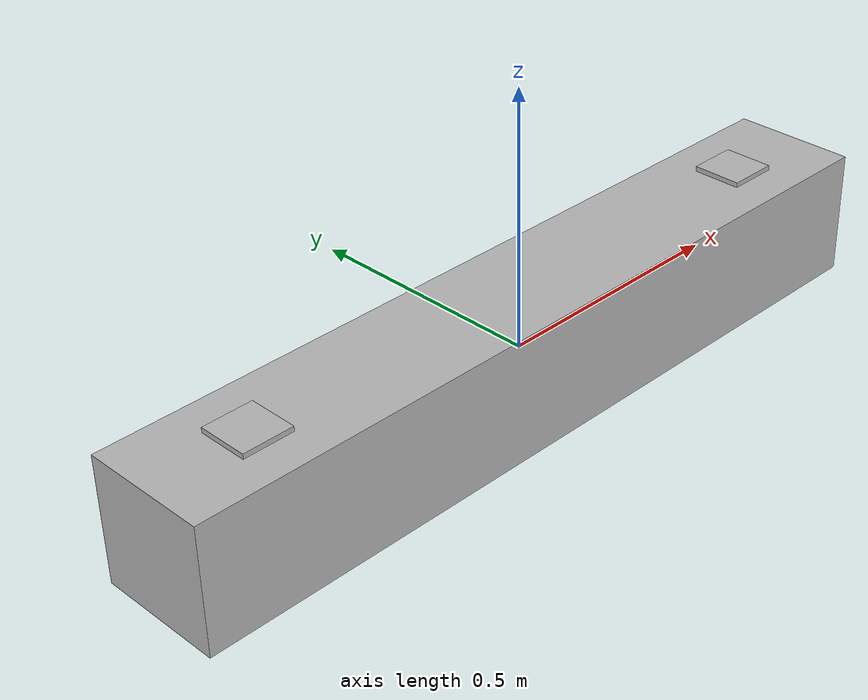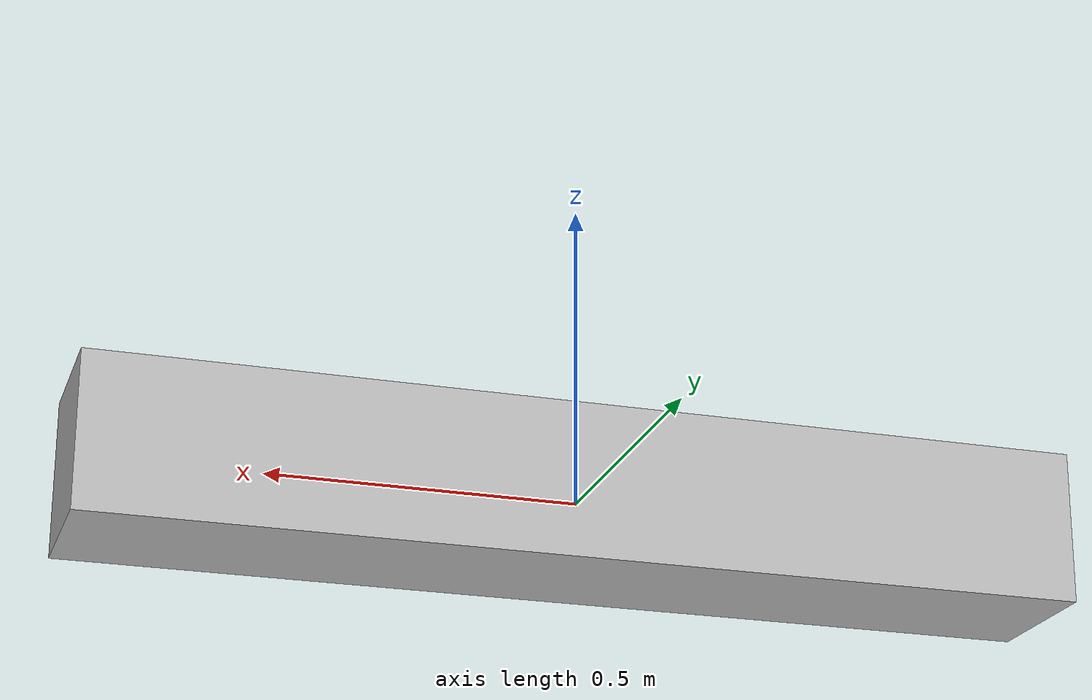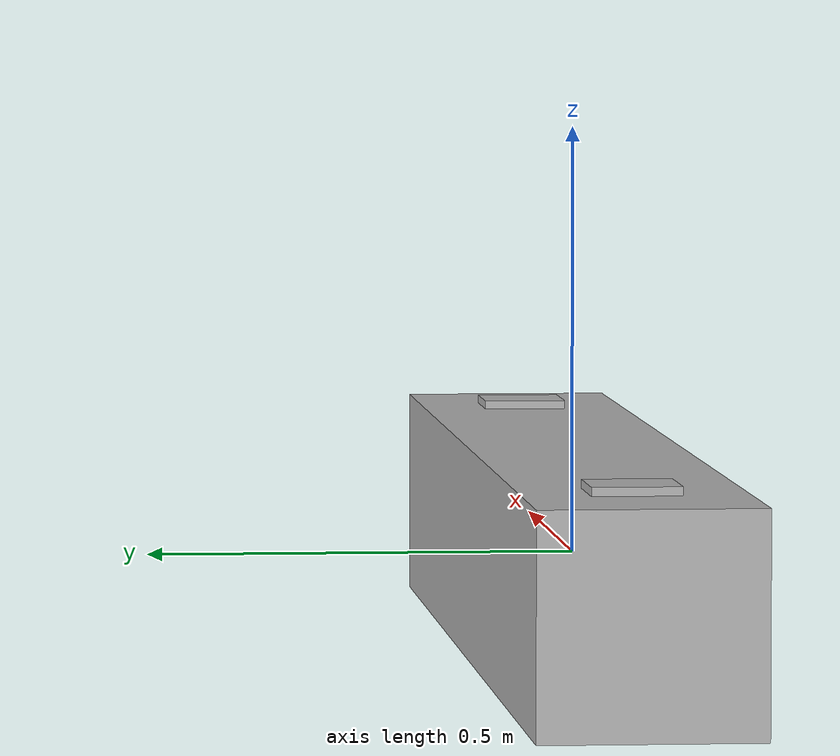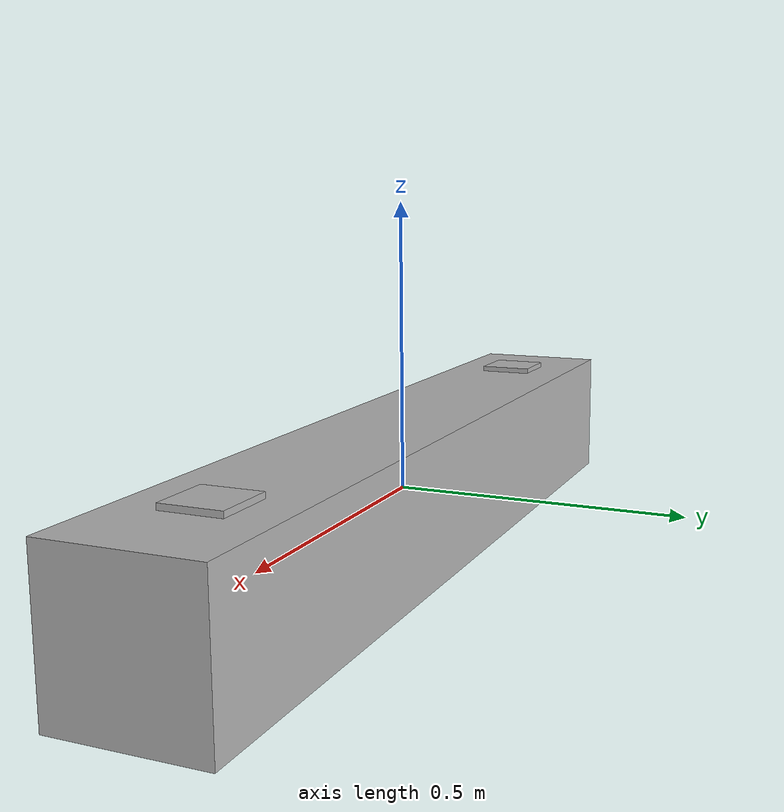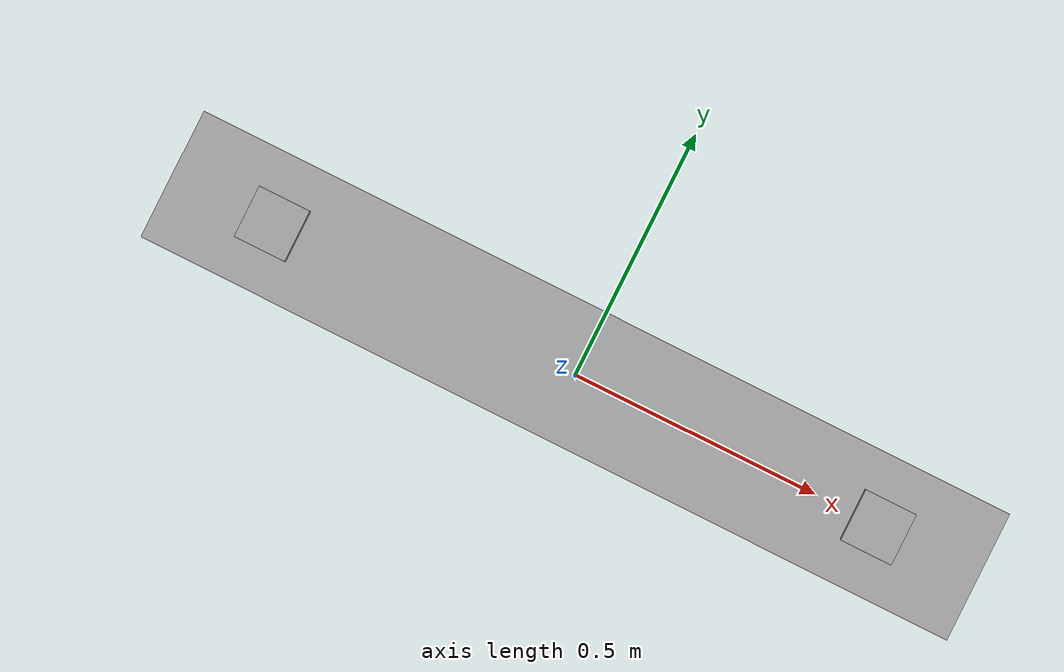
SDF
<?xml version='1.0'?>
<sdf version='1.5'>
  <model name="obstacle">
        <static>false</static>
    <!--obstacle_link-->
    <link name="obstacle">
      <pose>0 0 0 0 0 0</pose>
        <inertial>
          <inertia>
            <ixx>0.0031</ixx>
            <ixy>0</ixy>
            <ixz>0</ixz>
            <iyy>0.0656</iyy>
            <iyz>0</iyz>
            <izz>0.0656</izz>
          </inertia>
          <mass>0.3</mass>
        </inertial>

        <collision name="my_collision">
            <geometry>
             <box>
             <size>1.6 0.25 0.25</size>
             </box>
            </geometry>
        </collision>

        <visual name="my_visual">
            <geometry>
             <box>
             <size>1.6 0.25 0.25</size>
             </box>
            </geometry>
        </visual>
    </link>

	<link name="payload_link_1">
      <pose>0.6 0 0.130 0 0 0</pose>
        <inertial>
          <inertia>
            <ixx>0.00000841666</ixx>
            <ixy>0</ixy>
            <ixz>0</ixz>
            <iyy>0.00000841666</iyy>
            <iyz>0</iyz>
            <izz>0.00001666666</izz>
          </inertia>
          <mass>0.01</mass>
        </inertial>

        <collision name="payload_link_1_collision">
            <geometry>
             <box>
             <size>0.1 0.1 0.01</size>
             </box>
            </geometry>

        </collision>

        <visual name="payload_link_1_visual">
            <geometry>
             <box>
             <size>0.1 0.1 0.01</size>
             </box>
            </geometry>
        </visual>
    </link>

    <joint name="payload_joint_1" type="revolute">
      <parent>obstacle</parent>
      <child>payload_link_1</child>
      <axis>
        <xyz>0 0 1</xyz>
        <limit>
          <upper>0.0</upper>
          <lower>0.0</lower>
        </limit>
      </axis>
      <sensor name="force_torque" type="force_torque">
        <update_rate>200</update_rate>
        <always_on>true</always_on>
      </sensor>
    </joint>

    <link name="payload_link_2">
      <pose>-0.6 0 0.130 0 0 0</pose>
        <inertial>
          <inertia>
            <ixx>0.00000841666</ixx>
            <ixy>0</ixy>
            <ixz>0</ixz>
            <iyy>0.00000841666</iyy>
            <iyz>0</iyz>
            <izz>0.00001666666</izz>
          </inertia>
          <mass>0.01</mass>
        </inertial>

        <collision name="payload_link_2_collision">
            <geometry>
             <box>
             <size>0.1 0.1 0.01</size>
             </box>
            </geometry>

        </collision>

        <visual name="payload_link_2_visual">
            <geometry>
             <box>
             <size>0.1 0.1 0.01</size>
             </box>
            </geometry>
        </visual>
    </link>

    <joint name="payload_joint_2" type="revolute">
      <parent>obstacle</parent>
      <child>payload_link_2</child>
      <axis>
        <xyz>0 0 1</xyz>
        <limit>
          <upper>-0</upper>
          <lower>0</lower>
        </limit>
      </axis>
      <sensor name="force_torque" type="force_torque">
        <update_rate>200</update_rate>
        <always_on>true</always_on>
      </sensor>
    </joint>
    <plugin name="p3d_base_controller" filename="libgazebo_ros_p3d.so">
      <alwaysOn>true</alwaysOn>
      <updateRate>250.0</updateRate>
      <bodyName>obstacle</bodyName>
      <topicName>odometry</topicName>
      <gaussianNoise>0.0</gaussianNoise>
      <frameName>world</frameName>
      <xyzOffsets>0 0 0</xyzOffsets>
      <rpyOffsets>0 0 0</rpyOffsets>
    </plugin>

    <plugin name="ft_sensor" filename="libgazebo_ros_ft_sensor.so">
      <always_on>true</always_on>
      <updateRate>200.0</updateRate>
      <topicName>/payload_joint1_ft_sensor</topicName>
      <jointName>payload_joint_1</jointName>
    </plugin>

    <plugin name="ft_sensor" filename="libgazebo_ros_ft_sensor.so">
      <always_on>true</always_on>
      <updateRate>200.0</updateRate>
      <topicName>/payload_joint2_ft_sensor</topicName>
      <jointName>payload_joint_2</jointName>
    </plugin>

  </model>
</sdf>
